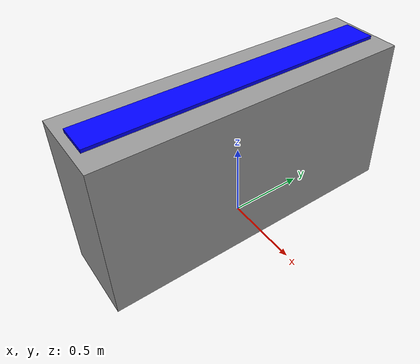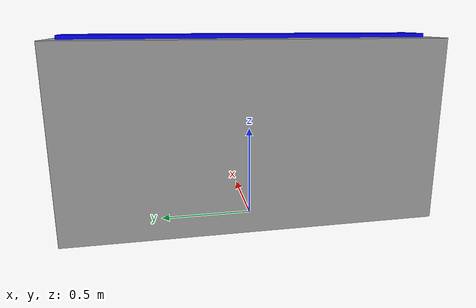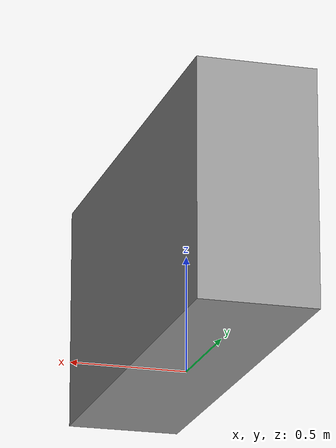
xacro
<?xml version="1.0"?>
<robot xmlns:xacro="http://www.ros.org/wiki/xacro" name="table_rail">

  <xacro:arg name="rail_position" default="0.0"/>

  <link name="world"/>

  <!-- Table -->
  <link name="table">
    <visual>
      <origin xyz="0 0 0.5"/>
      <geometry><box size="0.5 2 1"/></geometry>
      <material name="grey"><color rgba="0.6 0.6 0.6 1.0"/></material>
    </visual>
    <collision>
      <origin xyz="0 0 0.5"/>
      <geometry><box size="0.5 2 1"/></geometry>
    </collision>
    <inertial>
      <origin xyz="0 0 0.5"/>
      <mass value="50.0"/>
      <inertia ixx="0.001" iyy="0.001" izz="0.001" ixy="0" ixz="0" iyz="0"/>
    </inertial>
  </link>

  <joint name="world_to_table" type="fixed">
    <origin xyz="0 0 0" rpy="0 0 0"/>
    <parent link="world"/>
    <child  link="table"/>
  </joint>

  <!-- Rail -->
  <link name="rail">
    <visual>
      <origin xyz="0 0 1.01"/>
      <geometry><box size="0.20 1.9 0.02"/></geometry>
      <material name="blue"><color rgba="0 0 1 1.0"/></material>
    </visual>
    <collision>
      <origin xyz="0 0 1.01"/>
      <geometry><box size="0.20 1.9 0.02"/></geometry>
    </collision>
    <inertial>
      <origin xyz="0 0 1.01"/>
      <mass value="5.0"/>
      <inertia ixx="1.508" iyy="0.0167" izz="1.504" ixy="0" ixz="0" iyz="0"/>
    </inertial>
  </link>

  <joint name="table_to_rail" type="fixed">
    <origin xyz="0 0 0" rpy="0 0 0"/>
    <parent link="table"/>
    <child  link="rail"/>
  </joint>

  <!-- Le curseur (montage rouge) est un modèle séparé : rail_curseur.
       Il est déplacé indépendamment par rail_mover via gz service set_pose. -->

</robot>
